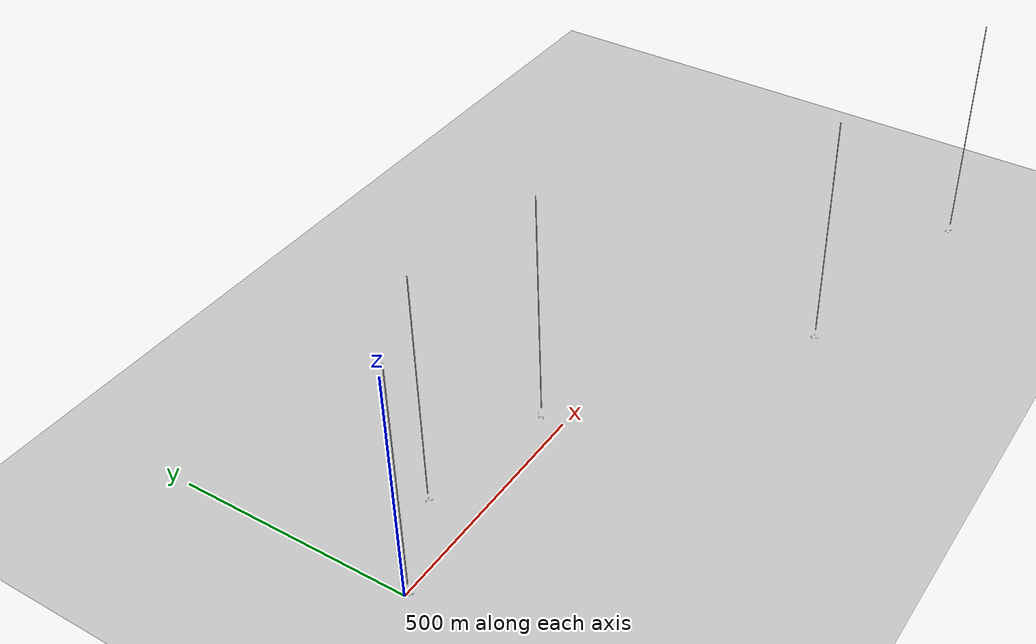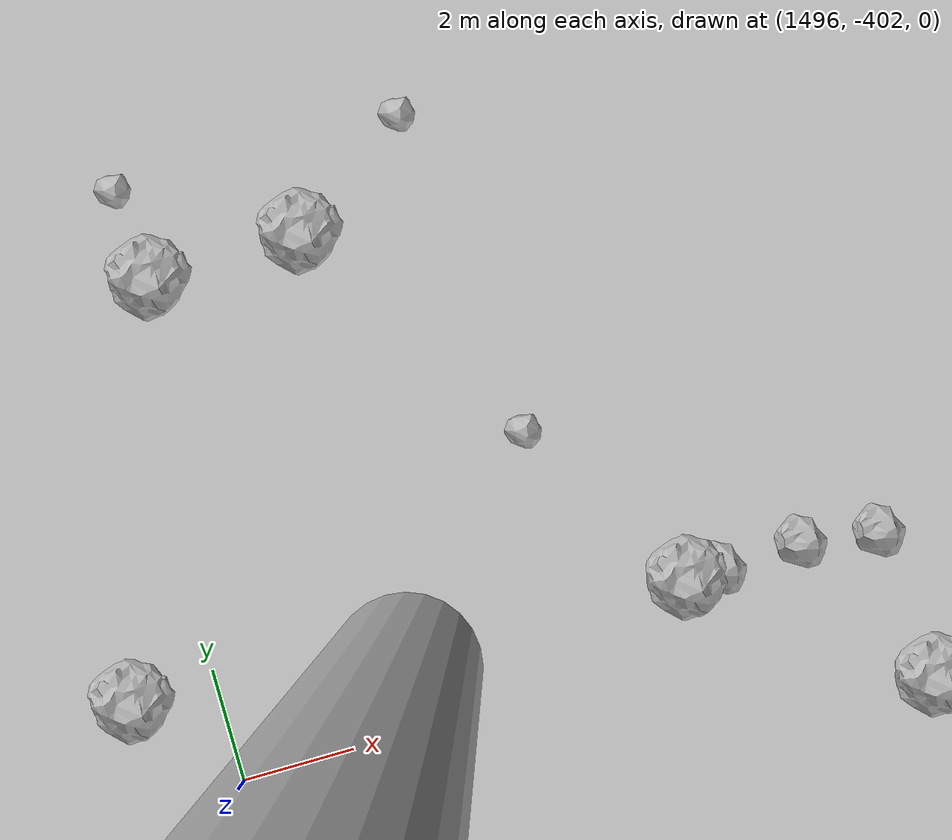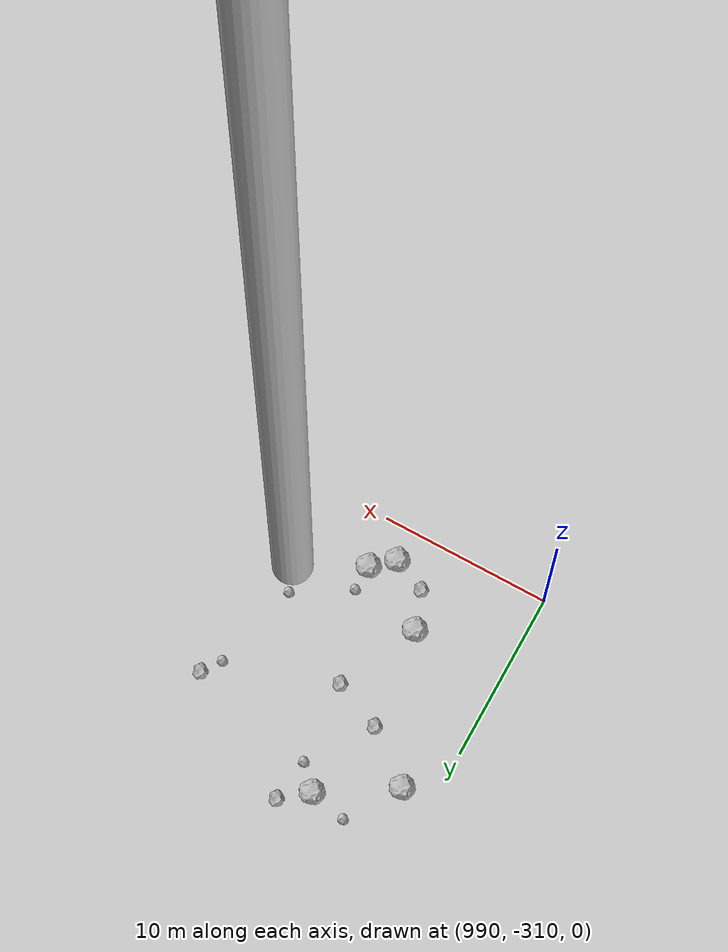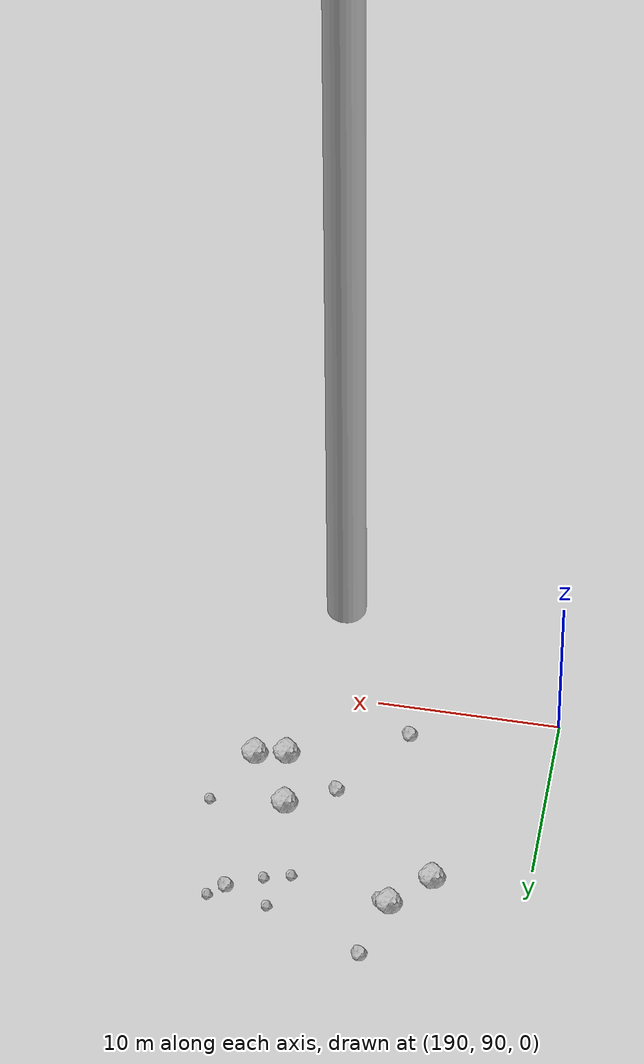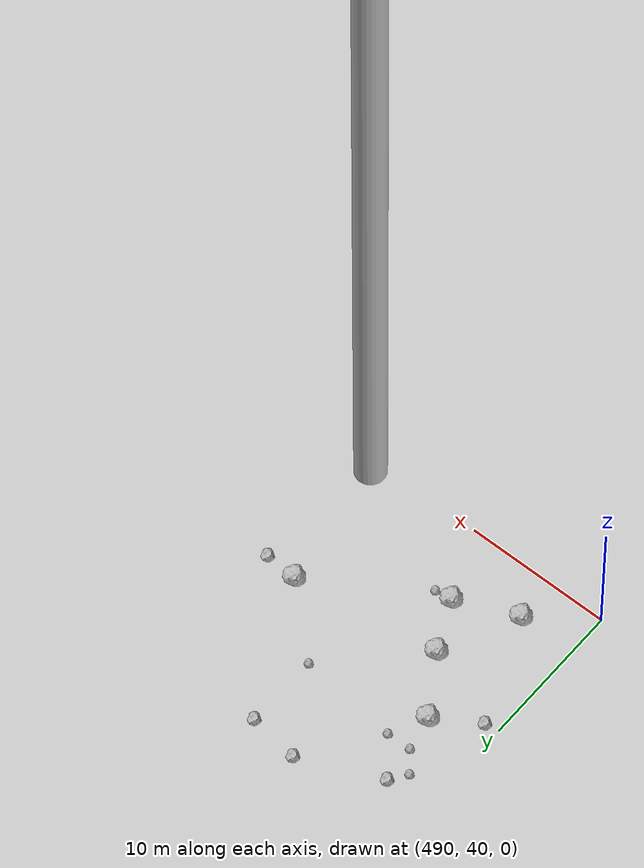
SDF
<?xml version="1.0" ?>
<sdf version="1.6">
  <world name="default">

    <include>
      <uri>model://custom_ground</uri>
    </include>

    <include>
      <uri>model://sun</uri>
    </include>

    <spherical_coordinates>
      <surface_model>EARTH_WGS84</surface_model>
      <latitude_deg>38.161479</latitude_deg>
      <longitude_deg>-122.454630</longitude_deg>
      <elevation>488.0</elevation>
      <heading_deg>90</heading_deg>
    </spherical_coordinates>

    <model name="rock1_0_0">
      <include>
        <uri>model://rock1</uri>
        <pose>6.192484960471212 5.351342484931685 0.5 0 0 0</pose>
      </include>
    </model>
    <model name="rock1_0_1">
      <include>
        <uri>model://rock1</uri>
        <pose>6.368357865246699 -1.5501479091322743 0.5 0 0 0</pose>
      </include>
    </model>
    <model name="rock1_0_2">
      <include>
        <uri>model://rock1</uri>
        <pose>10.508083355290259 -9.005822891644396 0.5 0 0 0</pose>
      </include>
    </model>
    <model name="rock1_0_3">
      <include>
        <uri>model://rock1</uri>
        <pose>4.743698088640437 -5.697490183954896 0.5 0 0 0</pose>
      </include>
    </model>
    <model name="rock1_0_4">
      <include>
        <uri>model://rock1</uri>
        <pose>12.067288213062286 -0.8825645747688231 0.5 0 0 0</pose>
      </include>
    </model>
    <model name="rock2_0_0">
      <include>
        <uri>model://rock2</uri>
        <pose>10.237897244901024 -8.856033284213797 0.3 0 0 0</pose>
      </include>
    </model>
    <model name="rock2_0_1">
      <include>
        <uri>model://rock2</uri>
        <pose>8.337425877423197 -6.681662301473194 0.3 0 0 0</pose>
      </include>
    </model>
    <model name="rock2_0_2">
      <include>
        <uri>model://rock2</uri>
        <pose>7.393559372893918 -2.454762030993189 0.3 0 0 0</pose>
      </include>
    </model>
    <model name="rock2_0_3">
      <include>
        <uri>model://rock2</uri>
        <pose>8.440679701972794 6.238975188194225 0.3 0 0 0</pose>
      </include>
    </model>
    <model name="rock2_0_4">
      <include>
        <uri>model://rock2</uri>
        <pose>15.378172863866537 5.487452611117744 0.3 0 0 0</pose>
      </include>
    </model>
    <model name="rock3_0_0">
      <include>
        <uri>model://rock3</uri>
        <pose>19.631519380693994 -1.499008261838707 0.2 0 0 0</pose>
      </include>
    </model>
    <model name="rock3_0_1">
      <include>
        <uri>model://rock3</uri>
        <pose>11.869094442438598 2.9315256773548786 0.2 0 0 0</pose>
      </include>
    </model>
    <model name="rock3_0_2">
      <include>
        <uri>model://rock3</uri>
        <pose>8.880812787837414 -9.184421606762633 0.2 0 0 0</pose>
      </include>
    </model>
    <model name="rock3_0_3">
      <include>
        <uri>model://rock3</uri>
        <pose>12.392458232515771 -9.095787592018997 0.2 0 0 0</pose>
      </include>
    </model>
    <model name="rock3_0_4">
      <include>
        <uri>model://rock3</uri>
        <pose>13.291351956610619 4.781092032845741 0.2 0 0 0</pose>
      </include>
    </model>
    <model name="rock1_1_0">
      <include>
        <uri>model://rock1</uri>
        <pose>203.85052962646017 97.85275985285146 0.5 0 0 0</pose>
      </include>
    </model>
    <model name="rock1_1_1">
      <include>
        <uri>model://rock1</uri>
        <pose>206.04856364665193 94.77352782210244 0.5 0 0 0</pose>
      </include>
    </model>
    <model name="rock1_1_2">
      <include>
        <uri>model://rock1</uri>
        <pose>195.19496988685947 101.54761964470275 0.5 0 0 0</pose>
      </include>
    </model>
    <model name="rock1_1_3">
      <include>
        <uri>model://rock1</uri>
        <pose>204.35221055691542 94.47761761221696 0.5 0 0 0</pose>
      </include>
    </model>
    <model name="rock1_1_4">
      <include>
        <uri>model://rock1</uri>
        <pose>197.19706515179325 103.58272437654328 0.5 0 0 0</pose>
      </include>
    </model>
    <model name="rock2_1_0">
      <include>
        <uri>model://rock2</uri>
        <pose>205.98761072824175 103.76245772591197 0.3 0 0 0</pose>
      </include>
    </model>
    <model name="rock2_1_1">
      <include>
        <uri>model://rock2</uri>
        <pose>201.24743869390315 96.41810750328466 0.3 0 0 0</pose>
      </include>
    </model>
    <model name="rock2_1_2">
      <include>
        <uri>model://rock2</uri>
        <pose>197.71181720876845 103.39242732963498 0.3 0 0 0</pose>
      </include>
    </model>
    <model name="rock2_1_3">
      <include>
        <uri>model://rock2</uri>
        <pose>198.22059431837397 107.03178904376162 0.3 0 0 0</pose>
      </include>
    </model>
    <model name="rock2_1_4">
      <include>
        <uri>model://rock2</uri>
        <pose>197.94883377196592 92.02960629671642 0.3 0 0 0</pose>
      </include>
    </model>
    <model name="rock3_1_0">
      <include>
        <uri>model://rock3</uri>
        <pose>202.61572726657107 102.47239279001288 0.2 0 0 0</pose>
      </include>
    </model>
    <model name="rock3_1_1">
      <include>
        <uri>model://rock3</uri>
        <pose>204.05285917141364 102.8653879638422 0.2 0 0 0</pose>
      </include>
    </model>
    <model name="rock3_1_2">
      <include>
        <uri>model://rock3</uri>
        <pose>203.56709517465106 104.66942949993346 0.2 0 0 0</pose>
      </include>
    </model>
    <model name="rock3_1_3">
      <include>
        <uri>model://rock3</uri>
        <pose>206.83335759298626 104.44183378275179 0.2 0 0 0</pose>
      </include>
    </model>
    <model name="rock3_1_4">
      <include>
        <uri>model://rock3</uri>
        <pose>207.87112563378057 98.10395521687987 0.2 0 0 0</pose>
      </include>
    </model>
    <model name="rock1_2_0">
      <include>
        <uri>model://rock1</uri>
        <pose>496.3334504841427 48.2070464022128 0.5 0 0 0</pose>
      </include>
    </model>
    <model name="rock1_2_1">
      <include>
        <uri>model://rock1</uri>
        <pose>493.8728712844576 43.053795006522776 0.5 0 0 0</pose>
      </include>
    </model>
    <model name="rock1_2_2">
      <include>
        <uri>model://rock1</uri>
        <pose>506.3274484197821 49.734121774818405 0.5 0 0 0</pose>
      </include>
    </model>
    <model name="rock1_2_3">
      <include>
        <uri>model://rock1</uri>
        <pose>493.8181263929741 52.11361526369062 0.5 0 0 0</pose>
      </include>
    </model>
    <model name="rock1_2_4">
      <include>
        <uri>model://rock1</uri>
        <pose>497.931738157132 44.8092326512814 0.5 0 0 0</pose>
      </include>
    </model>
    <model name="rock2_2_0">
      <include>
        <uri>model://rock2</uri>
        <pose>508.57423638816425 49.56780197367244 0.3 0 0 0</pose>
      </include>
    </model>
    <model name="rock2_2_1">
      <include>
        <uri>model://rock2</uri>
        <pose>493.0079228599817 56.96841716523639 0.3 0 0 0</pose>
      </include>
    </model>
    <model name="rock2_2_2">
      <include>
        <uri>model://rock2</uri>
        <pose>498.4115734112184 59.33416435831874 0.3 0 0 0</pose>
      </include>
    </model>
    <model name="rock2_2_3">
      <include>
        <uri>model://rock2</uri>
        <pose>501.84824962823524 58.859001755384256 0.3 0 0 0</pose>
      </include>
    </model>
    <model name="rock2_2_4">
      <include>
        <uri>model://rock2</uri>
        <pose>490.8931893627357 50.23803606306235 0.3 0 0 0</pose>
      </include>
    </model>
    <model name="rock3_2_0">
      <include>
        <uri>model://rock3</uri>
        <pose>499.0632069833333 44.880028530228245 0.2 0 0 0</pose>
      </include>
    </model>
    <model name="rock3_2_1">
      <include>
        <uri>model://rock3</uri>
        <pose>501.76655956360764 53.740123328749405 0.2 0 0 0</pose>
      </include>
    </model>
    <model name="rock3_2_2">
      <include>
        <uri>model://rock3</uri>
        <pose>494.97828050398084 54.43921947779405 0.2 0 0 0</pose>
      </include>
    </model>
    <model name="rock3_2_3">
      <include>
        <uri>model://rock3</uri>
        <pose>492.19213372574427 55.766244222334166 0.2 0 0 0</pose>
      </include>
    </model>
    <model name="rock3_2_4">
      <include>
        <uri>model://rock3</uri>
        <pose>493.27512407685373 54.40782444523185 0.2 0 0 0</pose>
      </include>
    </model>
    <model name="rock1_3_0">
      <include>
        <uri>model://rock1</uri>
        <pose>995.4958553578314 -304.9430234389039 0.5 0 0 0</pose>
      </include>
    </model>
    <model name="rock1_3_1">
      <include>
        <uri>model://rock1</uri>
        <pose>991.8557801445262 -296.78930402263944 0.5 0 0 0</pose>
      </include>
    </model>
    <model name="rock1_3_2">
      <include>
        <uri>model://rock1</uri>
        <pose>996.0156372760623 -294.1899984616412 0.5 0 0 0</pose>
      </include>
    </model>
    <model name="rock1_3_3">
      <include>
        <uri>model://rock1</uri>
        <pose>998.2821785240859 -308.00855559268194 0.5 0 0 0</pose>
      </include>
    </model>
    <model name="rock1_3_4">
      <include>
        <uri>model://rock1</uri>
        <pose>999.5186404297585 -306.9299582782071 0.5 0 0 0</pose>
      </include>
    </model>
    <model name="rock2_3_0">
      <include>
        <uri>model://rock2</uri>
        <pose>997.6450712200135 -300.27862577426214 0.3 0 0 0</pose>
      </include>
    </model>
    <model name="rock2_3_1">
      <include>
        <uri>model://rock2</uri>
        <pose>1004.7355355552359 -297.15230897627777 0.3 0 0 0</pose>
      </include>
    </model>
    <model name="rock2_3_2">
      <include>
        <uri>model://rock2</uri>
        <pose>997.5492363813274 -292.9741511153965 0.3 0 0 0</pose>
      </include>
    </model>
    <model name="rock2_3_3">
      <include>
        <uri>model://rock2</uri>
        <pose>994.8118348241662 -299.08314585119746 0.3 0 0 0</pose>
      </include>
    </model>
    <model name="rock2_3_4">
      <include>
        <uri>model://rock2</uri>
        <pose>996.3082205043476 -307.18307434603093 0.3 0 0 0</pose>
      </include>
    </model>
    <model name="rock3_3_0">
      <include>
        <uri>model://rock3</uri>
        <pose>993.8079841172796 -293.7647255398193 0.2 0 0 0</pose>
      </include>
    </model>
    <model name="rock3_3_1">
      <include>
        <uri>model://rock3</uri>
        <pose>1002.6711664042824 -303.5359150272421 0.2 0 0 0</pose>
      </include>
    </model>
    <model name="rock3_3_2">
      <include>
        <uri>model://rock3</uri>
        <pose>1003.9547599317984 -298.296458819749 0.2 0 0 0</pose>
      </include>
    </model>
    <model name="rock3_3_3">
      <include>
        <uri>model://rock3</uri>
        <pose>999.505653206342 -305.4590185922482 0.2 0 0 0</pose>
      </include>
    </model>
    <model name="rock3_3_4">
      <include>
        <uri>model://rock3</uri>
        <pose>997.2282188695358 -295.50746328064736 0.2 0 0 0</pose>
      </include>
    </model>
    <model name="rock1_4_0">
      <include>
        <uri>model://rock1</uri>
        <pose>1496.8877504270292 -393.0714915227261 0.5 0 0 0</pose>
      </include>
    </model>
    <model name="rock1_4_1">
      <include>
        <uri>model://rock1</uri>
        <pose>1494.5628520032415 -400.09856942197194 0.5 0 0 0</pose>
      </include>
    </model>
    <model name="rock1_4_2">
      <include>
        <uri>model://rock1</uri>
        <pose>1499.6467708986554 -393.0269359052482 0.5 0 0 0</pose>
      </include>
    </model>
    <model name="rock1_4_3">
      <include>
        <uri>model://rock1</uri>
        <pose>1504.4640214884434 -400.70090021563874 0.5 0 0 0</pose>
      </include>
    </model>
    <model name="rock1_4_4">
      <include>
        <uri>model://rock1</uri>
        <pose>1508.163639790317 -403.52528345936673 0.5 0 0 0</pose>
      </include>
    </model>
    <model name="rock2_4_0">
      <include>
        <uri>model://rock2</uri>
        <pose>1506.5237154560139 -400.65979188809433 0.3 0 0 0</pose>
      </include>
    </model>
    <model name="rock2_4_1">
      <include>
        <uri>model://rock2</uri>
        <pose>1507.8886270342668 -400.85303376957233 0.3 0 0 0</pose>
      </include>
    </model>
    <model name="rock2_4_2">
      <include>
        <uri>model://rock2</uri>
        <pose>1502.205919905367 -406.4310708732078 0.3 0 0 0</pose>
      </include>
    </model>
    <model name="rock2_4_3">
      <include>
        <uri>model://rock2</uri>
        <pose>1492.8740033503814 -393.3483610334472 0.3 0 0 0</pose>
      </include>
    </model>
    <model name="rock2_4_4">
      <include>
        <uri>model://rock2</uri>
        <pose>1505.0433985459179 -400.71558554837117 0.3 0 0 0</pose>
      </include>
    </model>
    <model name="rock3_4_0">
      <include>
        <uri>model://rock3</uri>
        <pose>1496.6518409976695 -391.46255826875756 0.2 0 0 0</pose>
      </include>
    </model>
    <model name="rock3_4_1">
      <include>
        <uri>model://rock3</uri>
        <pose>1501.8028425239281 -391.5435395935954 0.2 0 0 0</pose>
      </include>
    </model>
    <model name="rock3_4_2">
      <include>
        <uri>model://rock3</uri>
        <pose>1494.3196688535852 -400.47880133326095 0.2 0 0 0</pose>
      </include>
    </model>
    <model name="rock3_4_3">
      <include>
        <uri>model://rock3</uri>
        <pose>1497.4529543856388 -408.64780534495117 0.2 0 0 0</pose>
      </include>
    </model>
    <model name="rock3_4_4">
      <include>
        <uri>model://rock3</uri>
        <pose>1502.3914156457765 -397.48730244140637 0.2 0 0 0</pose>
      </include>
    </model>

    <model name="cylinder_1">
      <static>true</static>
      <link name="link">
        <visual name="visual">
          <geometry>
            <cylinder>
              <radius>1</radius>
              <length>500</length>
            </cylinder>
          </geometry>
        </visual>
      </link>
      <pose>10 0 270 0 0 0</pose>
    </model>

    <model name="cylinder_2">
      <static>true</static>
      <link name="link">
        <visual name="visual">
          <geometry>
            <cylinder>
              <radius>1</radius>
              <length>500</length>
            </cylinder>
          </geometry>
        </visual>
      </link>
      <pose>200 100 270 0 0 0</pose>
    </model>

    <model name="cylinder_3">
      <static>true</static>
      <link name="link">
        <visual name="visual">
          <geometry>
            <cylinder>
              <radius>1</radius>
              <length>500</length>
            </cylinder>
          </geometry>
        </visual>
      </link>
      <pose>500 50 270 0 0 0</pose>
    </model>

    <model name="cylinder_4">
      <static>true</static>
      <link name="link">
        <visual name="visual">
          <geometry>
            <cylinder>
              <radius>1</radius>
              <length>500</length>
            </cylinder>
          </geometry>
        </visual>
      </link>
      <pose>1000 -300 270 0 0 0</pose>
    </model>

    <model name="cylinder_5">
      <static>true</static>
      <link name="link">
        <visual name="visual">
          <geometry>
            <cylinder>
              <radius>1</radius>
              <length>500</length>
            </cylinder>
          </geometry>
        </visual>
      </link>
      <pose>1500 -400 270 0 0 0</pose>
    </model>

  </world>
</sdf>

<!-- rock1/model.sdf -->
<sdf version="1.6">
  <model name="rock1">
    <static>true</static> <!-- Set to true if the model should not move -->
    <pose>0 0 0 0 0 0</pose>

    <!--z offset is 0.5 for full scale-->

    <link name="link">
      <collision name="rock1_collision">
        <geometry>
          <mesh>
            <uri>model://meshes/rock1.dae</uri>
          </mesh>
        </geometry>
      </collision>
      <visual name="rock1_visual">
        <geometry>
          <mesh>
            <uri>model://meshes/rock1.dae</uri>
          </mesh>
        </geometry>
        <material>
          <script>
            <uri>model://materials/scripts/sand_pebbles.material</uri>
            <name>custom_ground/Image</name>
          </script>
        </material>
      </visual>
    </link>
  </model>
</sdf>

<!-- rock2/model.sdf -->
<sdf version="1.6">
  <model name="rock2">
    <static>true</static> <!-- Set to true if the model should not move -->
    <pose>0 0 0 0 0 0</pose>

    <!--z offset is 0.3 for full scale-->

    <link name="link">
      <collision name="rock2_collision">
        <geometry>
          <mesh>
            <uri>model://meshes/rock2.dae</uri>
          </mesh>
        </geometry>
      </collision>
      <visual name="rock2_visual">
        <geometry>
          <mesh>
            <uri>model://meshes/rock2.dae</uri>
          </mesh>
        </geometry>
        <material>
          <script>
            <uri>model://materials/scripts/sand_pebbles.material</uri>
            <name>custom_ground/Image</name>
          </script>
        </material>
      </visual>
    </link>
  </model>
</sdf>

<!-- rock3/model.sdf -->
<sdf version="1.6">
  <model name="rock3">
    <static>true</static> <!-- Set to true if the model should not move -->
    <pose>0 0 0 0 0 0</pose>

    <!--z offset is 0.2 for full scale-->

    <link name="link">
      <collision name="rock3_collision">
        <geometry>
          <mesh>
            <uri>model://meshes/rock3.dae</uri>
          </mesh>
        </geometry>
      </collision>
      <visual name="rock3_visual">
        <geometry>
          <mesh>
            <uri>model://meshes/rock3.dae</uri>
          </mesh>
        </geometry>
        <material>
          <script>
            <uri>model://materials/scripts/sand_pebbles.material</uri>
            <name>custom_ground/Image</name>
          </script>
        </material>
      </visual>
    </link>
  </model>
</sdf>

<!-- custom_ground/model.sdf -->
<sdf version="1.6">
  <model name="custom_ground">
    <static>true</static> <!-- Ground is static and immovable -->
    <link name="ground_link">
      <pose>240 0 0 0 0 0</pose> <!-- Position and orientation relative to the world -->
      <!-- Visual Representation -->
      <visual name="ground_visual">
        <geometry>
          <plane>
            <normal>0 0 1</normal> <!-- Upward facing plane -->
            <size>500 500</size> <!-- Size of the plane -->
          </plane>
        </geometry>
        <material>
          <script>
            <uri>model://materials/scripts/sand_pebbles.material</uri>
            <name>custom_ground/Image</name>
          </script>
        </material>
      </visual>

      <!-- Collision Representation -->
      <collision name="ground_collision">
        <geometry>
          <plane>
            <normal>0 0 1</normal>
            <size>100 100</size>
          </plane>
        </geometry>
      </collision>

    </link>
  </model>
</sdf>
